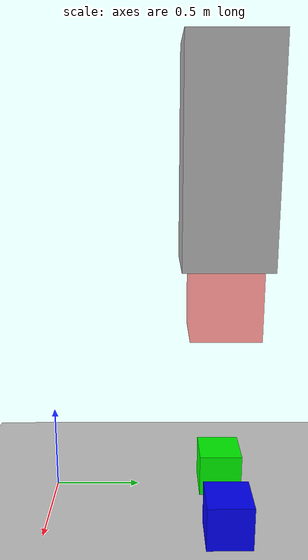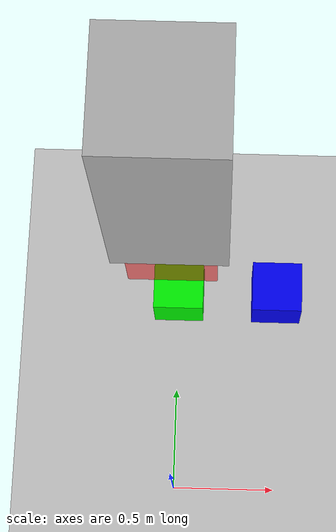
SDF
<?xml version="1.0"?>
<sdf version="1.4">
	<world name="1grip_1block">
		<include>
			<uri>model://ground_plane</uri>
		</include>

		<include>
			<uri>model://sun</uri>
		</include>

		<model name="finger">
			<pose>0 1.0 2.0 0 0 0</pose>
			<link name="finger_body">
				<collision name="fbody_collision">
					<geometry>
						<box>
							<size>0.5 0.5 1</size>
						</box>
					</geometry>
				</collision>

				<gravity>0</gravity>

				<visual name="fbody_visual">
					<geometry>
						<box>
							<size>0.5 0.5 1.2</size>
						</box>
					</geometry>
					<transparency>0.0</transparency>
				</visual>

				<sensor name='dummy_contact' type='contact'>
					<plugin name="sticky_finger_2" filename="libsticky_fingers.so">
						<capacity>25</capacity>
					</plugin>
          			<contact>
            			<collision>fbody_collision</collision>
          			</contact>
        		</sensor>

			</link>

			<link name="finger_tip">
				<pose>0 0 -0.75 0 0 0</pose>
				<gravity>0</gravity>

				<visual name="ftip_visual">
					<geometry>
						<box>
							<size>0.4 0.4 0.5</size>
						</box>
					</geometry>
					<transparency>0.5</transparency>
					<material>
						<ambient>1.0 0.0 0.0 0.0</ambient>
					</material>
				</visual>
				<collision name="ftip_collision">
					<geometry>
						<box>
							<size>0.4 0.4 0.5</size>
						</box>
					</geometry>
				</collision>

				<sensor name='tip_contact' type='contact'>
					<plugin name="sticky_finger" filename="libsticky_fingers.so">
						<capacity>25</capacity>
					</plugin>
          			<contact>
            			<collision>ftip_collision</collision>
          			</contact>
        		</sensor>
			</link>

			<joint name="fixed1" type="prismatic">
 				<parent>finger_body</parent>
 				<child>finger_tip</child>
 				<pose>0 0 0 0 0 0</pose>
 				<axis>
 					<xyz>0 0 1</xyz>
 					<limit>
 						<upper>0</upper>
 						<lower>0</lower>
 					</limit>
				</axis>
  			</joint>
		</model>

		<model name="b1">
			<pose> 0 1.0 0.125 0 0 0</pose>
			<link name="b1_body">
				<collision name="b1_collision">
					<geometry>
						<box>
							<size>0.25 0.25 0.25</size>
						</box>
					</geometry>
				</collision>
				<visual name="b1_visual">
					<geometry>
						<box>
							<size>0.25 0.25 0.25</size>
						</box>
					</geometry>
					<material>
						<ambient>0.0 1.0 0.0 0.0</ambient>
					</material>
				</visual>
			</link>

			<link name="b2_body">

				<pose> 0.5 0 0 0 0 0</pose>

				<collision name="b2_collision">
					<geometry>
						<box>
							<size>0.25 0.25 0.25</size>
						</box>
					</geometry>
				</collision>
				<visual name="b2_visual">
					<geometry>
						<box>
							<size>0.25 0.25 0.25</size>
						</box>
					</geometry>
					<material>
						<ambient>0.0 0.0 1.0 0.0</ambient>
					</material>
				</visual>

						<sensor name='my_contact' type='contact'>
          <contact>
            <collision>b2_collision</collision>
          </contact>
        </sensor>
			</link>

			<joint name="fixed2" type="prismatic">
 				<parent>b2_body</parent>
 				<child>b1_body</child>
 				<pose>0 0 0 0 0 0</pose>
 				<axis>
 					<xyz>0 0 1</xyz>
 					<limit>
 						<upper>0.1</upper>
 						<lower>-0.1</lower>
 					</limit>
				</axis>
  			</joint>
		</model>
	</world>
</sdf>
